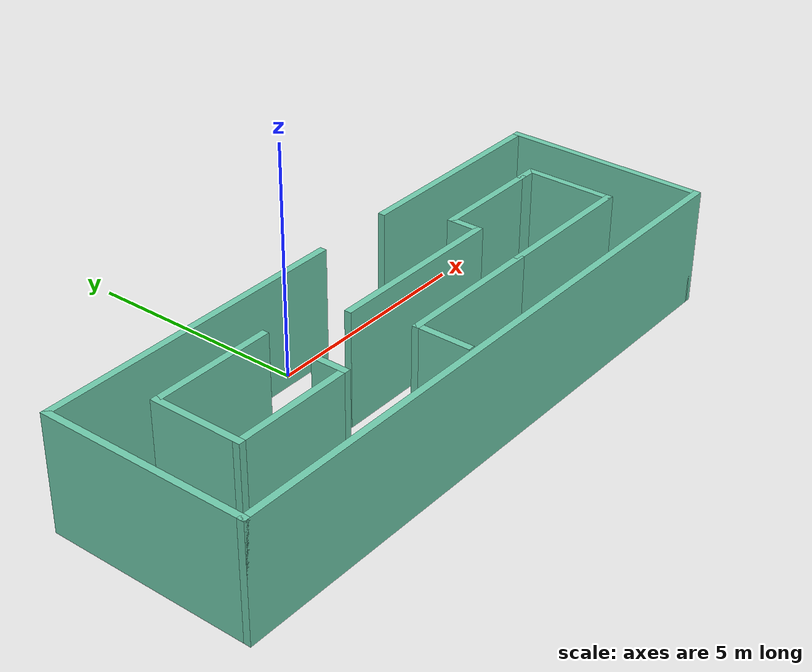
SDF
<?xml version='1.0'?>
<sdf version='1.7'>
  <model name='little-room'>
    <pose>0.675 -2.3025 0 0 -0 0</pose>
    <link name='Wall_12'>
      <collision name='Wall_12_Collision'>
        <geometry>
          <box>
            <size>4.5 0.15 2.5</size>
          </box>
        </geometry>
        <pose>0 0 1.25 0 -0 0</pose>
      </collision>
      <visual name='Wall_12_Visual'>
        <pose>0 0 1.25 0 -0 0</pose>
        <geometry>
          <box>
            <size>4.5 0.15 2.5</size>
          </box>
        </geometry>
        <material>
          <script>
            <uri>file://media/materials/scripts/gazebo.material</uri>
            <name>Gazebo/Grey</name>
          </script>
          <ambient>0.435294 0.796078 0.67451 1</ambient>
        </material>
        <meta>
          <layer>0</layer>
        </meta>
      </visual>
      <pose>-6.675 -0.0525 0 0 -0 1.5708</pose>
    </link>
    <link name='Wall_13'>
      <collision name='Wall_13_Collision'>
        <geometry>
          <box>
            <size>7 0.15 2.5</size>
          </box>
        </geometry>
        <pose>0 0 1.25 0 -0 0</pose>
      </collision>
      <visual name='Wall_13_Visual'>
        <pose>0 0 1.25 0 -0 0</pose>
        <geometry>
          <box>
            <size>7 0.15 2.5</size>
          </box>
        </geometry>
        <material>
          <script>
            <uri>file://media/materials/scripts/gazebo.material</uri>
            <name>Gazebo/Grey</name>
          </script>
          <ambient>0.435294 0.796078 0.67451 1</ambient>
        </material>
        <meta>
          <layer>0</layer>
        </meta>
      </visual>
      <pose>-3.25 2.1225 0 0 -0 0</pose>
    </link>
    <link name='Wall_16'>
      <collision name='Wall_16_Collision'>
        <geometry>
          <box>
            <size>2.75 0.15 2.5</size>
          </box>
        </geometry>
        <pose>0 0 1.25 0 -0 0</pose>
      </collision>
      <visual name='Wall_16_Visual'>
        <pose>0 0 1.25 0 -0 0</pose>
        <geometry>
          <box>
            <size>2.75 0.15 2.5</size>
          </box>
        </geometry>
        <material>
          <script>
            <uri>file://media/materials/scripts/gazebo.material</uri>
            <name>Gazebo/Grey</name>
          </script>
          <ambient>0.435294 0.796078 0.67451 1</ambient>
        </material>
        <meta>
          <layer>0</layer>
        </meta>
      </visual>
      <pose>-3.99185 -0.849499 0 0 -0 0</pose>
    </link>
    <link name='Wall_17'>
      <collision name='Wall_17_Collision'>
        <geometry>
          <box>
            <size>0.75 0.15 2.5</size>
          </box>
        </geometry>
        <pose>0 0 1.25 0 -0 0</pose>
      </collision>
      <visual name='Wall_17_Visual'>
        <pose>0 0 1.25 0 -0 0</pose>
        <geometry>
          <box>
            <size>0.75 0.15 2.5</size>
          </box>
        </geometry>
        <material>
          <script>
            <uri>file://media/materials/scripts/gazebo.material</uri>
            <name>Gazebo/Grey</name>
          </script>
          <ambient>0.435294 0.796078 0.67451 1</ambient>
        </material>
        <meta>
          <layer>0</layer>
        </meta>
      </visual>
      <pose>-2.69185 -0.5495 0 0 -0 1.5708</pose>
    </link>
    <link name='Wall_19'>
      <collision name='Wall_19_Collision'>
        <geometry>
          <box>
            <size>2 0.15 2.5</size>
          </box>
        </geometry>
        <pose>0 0 1.25 0 -0 0</pose>
      </collision>
      <visual name='Wall_19_Visual'>
        <pose>0 0 1.25 0 -0 0</pose>
        <geometry>
          <box>
            <size>2 0.15 2.5</size>
          </box>
        </geometry>
        <material>
          <script>
            <uri>file://media/materials/scripts/gazebo.material</uri>
            <name>Gazebo/Grey</name>
          </script>
          <ambient>0.435294 0.796078 0.67451 1</ambient>
        </material>
        <meta>
          <layer>0</layer>
        </meta>
      </visual>
      <pose>-5.29185 0.0755 0 0 -0 1.5708</pose>
    </link>
    <link name='Wall_2'>
      <collision name='Wall_2_Collision'>
        <geometry>
          <box>
            <size>13.5 0.15 2.5</size>
          </box>
        </geometry>
        <pose>0 0 1.25 0 -0 0</pose>
      </collision>
      <visual name='Wall_2_Visual'>
        <pose>0 0 1.25 0 -0 0</pose>
        <geometry>
          <box>
            <size>13.5 0.15 2.5</size>
          </box>
        </geometry>
        <material>
          <script>
            <uri>file://media/materials/scripts/gazebo.material</uri>
            <name>Gazebo/Grey</name>
          </script>
          <ambient>0.435294 0.796078 0.67451 1</ambient>
        </material>
        <meta>
          <layer>0</layer>
        </meta>
      </visual>
      <pose>0 -2.2275 0 0 -0 0</pose>
    </link>
    <link name='Wall_20'>
      <collision name='Wall_20_Collision'>
        <geometry>
          <box>
            <size>2.75 0.15 2.5</size>
          </box>
        </geometry>
        <pose>0 0 1.25 0 -0 0</pose>
      </collision>
      <visual name='Wall_20_Visual'>
        <pose>0 0 1.25 0 -0 0</pose>
        <geometry>
          <box>
            <size>2.75 0.15 2.5</size>
          </box>
        </geometry>
        <material>
          <script>
            <uri>file://media/materials/scripts/gazebo.material</uri>
            <name>Gazebo/Grey</name>
          </script>
          <ambient>0.435294 0.796078 0.67451 1</ambient>
        </material>
        <meta>
          <layer>0</layer>
        </meta>
      </visual>
      <pose>-3.99185 1.0005 0 0 -0 0</pose>
    </link>
    <link name='Wall_22'>
      <collision name='Wall_22_Collision'>
        <geometry>
          <box>
            <size>4 0.15 2.5</size>
          </box>
        </geometry>
        <pose>0 0 1.25 0 -0 0</pose>
      </collision>
      <visual name='Wall_22_Visual'>
        <pose>0 0 1.25 0 -0 0</pose>
        <geometry>
          <box>
            <size>4 0.15 2.5</size>
          </box>
        </geometry>
        <material>
          <script>
            <uri>file://media/materials/scripts/gazebo.material</uri>
            <name>Gazebo/Grey</name>
          </script>
          <ambient>0.435294 0.796078 0.67451 1</ambient>
        </material>
        <meta>
          <layer>0</layer>
        </meta>
      </visual>
      <pose>0.782783 0.303492 0 0 -0 0</pose>
    </link>
    <link name='Wall_23'>
      <collision name='Wall_23_Collision'>
        <geometry>
          <box>
            <size>0.75 0.15 2.5</size>
          </box>
        </geometry>
        <pose>0 0 1.25 0 -0 0</pose>
      </collision>
      <visual name='Wall_23_Visual'>
        <pose>0 0 1.25 0 -0 0</pose>
        <geometry>
          <box>
            <size>0.75 0.15 2.5</size>
          </box>
        </geometry>
        <material>
          <script>
            <uri>file://media/materials/scripts/gazebo.material</uri>
            <name>Gazebo/Grey</name>
          </script>
          <ambient>0.435294 0.796078 0.67451 1</ambient>
        </material>
        <meta>
          <layer>0</layer>
        </meta>
      </visual>
      <pose>2.70778 0.603492 0 0 -0 1.5708</pose>
    </link>
    <link name='Wall_24'>
      <collision name='Wall_24_Collision'>
        <geometry>
          <box>
            <size>2.5 0.15 2.5</size>
          </box>
        </geometry>
        <pose>0 0 1.25 0 -0 0</pose>
      </collision>
      <visual name='Wall_24_Visual'>
        <pose>0 0 1.25 0 -0 0</pose>
        <geometry>
          <box>
            <size>2.5 0.15 2.5</size>
          </box>
        </geometry>
        <material>
          <script>
            <uri>file://media/materials/scripts/gazebo.material</uri>
            <name>Gazebo/Grey</name>
          </script>
          <ambient>0.435294 0.796078 0.67451 1</ambient>
        </material>
        <meta>
          <layer>0</layer>
        </meta>
      </visual>
      <pose>3.88278 0.903492 0 0 -0 0</pose>
    </link>
    <link name='Wall_25'>
      <collision name='Wall_25_Collision'>
        <geometry>
          <box>
            <size>0.5 0.15 2.5</size>
          </box>
        </geometry>
        <pose>0 0 1.25 0 -0 0</pose>
      </collision>
      <visual name='Wall_25_Visual'>
        <pose>0 0 1.25 0 -0 0</pose>
        <geometry>
          <box>
            <size>0.5 0.15 2.5</size>
          </box>
        </geometry>
        <material>
          <script>
            <uri>file://media/materials/scripts/gazebo.material</uri>
            <name>Gazebo/Grey</name>
          </script>
          <ambient>0.435294 0.796078 0.67451 1</ambient>
        </material>
        <meta>
          <layer>0</layer>
        </meta>
      </visual>
      <pose>5.23278 0.903492 0 0 -0 0</pose>
    </link>
    <link name='Wall_26'>
      <collision name='Wall_26_Collision'>
        <geometry>
          <box>
            <size>2 0.15 2.5</size>
          </box>
        </geometry>
        <pose>0 0 1.25 0 -0 0</pose>
      </collision>
      <visual name='Wall_26_Visual'>
        <pose>0 0 1.25 0 -0 0</pose>
        <geometry>
          <box>
            <size>2 0.15 2.5</size>
          </box>
        </geometry>
        <material>
          <script>
            <uri>file://media/materials/scripts/gazebo.material</uri>
            <name>Gazebo/Grey</name>
          </script>
          <ambient>0.435294 0.796078 0.67451 1</ambient>
        </material>
        <meta>
          <layer>0</layer>
        </meta>
      </visual>
      <pose>5.40778 -0.021508 0 0 -0 -1.5708</pose>
    </link>
    <link name='Wall_27'>
      <collision name='Wall_27_Collision'>
        <geometry>
          <box>
            <size>3.25 0.15 2.5</size>
          </box>
        </geometry>
        <pose>0 0 1.25 0 -0 0</pose>
      </collision>
      <visual name='Wall_27_Visual'>
        <pose>0 0 1.25 0 -0 0</pose>
        <geometry>
          <box>
            <size>3.25 0.15 2.5</size>
          </box>
        </geometry>
        <material>
          <script>
            <uri>file://media/materials/scripts/gazebo.material</uri>
            <name>Gazebo/Grey</name>
          </script>
          <ambient>0.435294 0.796078 0.67451 1</ambient>
        </material>
        <meta>
          <layer>0</layer>
        </meta>
      </visual>
      <pose>3.85778 -0.946508 0 0 -0 3.14159</pose>
    </link>
    <link name='Wall_3'>
      <collision name='Wall_3_Collision'>
        <geometry>
          <box>
            <size>4.5 0.15 2.5</size>
          </box>
        </geometry>
        <pose>0 0 1.25 0 -0 0</pose>
      </collision>
      <visual name='Wall_3_Visual'>
        <pose>0 0 1.25 0 -0 0</pose>
        <geometry>
          <box>
            <size>4.5 0.15 2.5</size>
          </box>
        </geometry>
        <material>
          <script>
            <uri>file://media/materials/scripts/gazebo.material</uri>
            <name>Gazebo/Grey</name>
          </script>
          <ambient>0.435294 0.796078 0.67451 1</ambient>
        </material>
        <meta>
          <layer>0</layer>
        </meta>
      </visual>
      <pose>6.675 -0.0525 0 0 -0 1.5708</pose>
    </link>
    <link name='Wall_32'>
      <collision name='Wall_32_Collision'>
        <geometry>
          <box>
            <size>3.25 0.15 2.5</size>
          </box>
        </geometry>
        <pose>0 0 1.25 0 -0 0</pose>
      </collision>
      <visual name='Wall_32_Visual'>
        <pose>0 0 1.25 0 -0 0</pose>
        <geometry>
          <box>
            <size>3.25 0.15 2.5</size>
          </box>
        </geometry>
        <material>
          <script>
            <uri>file://media/materials/scripts/gazebo.material</uri>
            <name>Gazebo/Grey</name>
          </script>
          <ambient>0.435294 0.796078 0.67451 1</ambient>
        </material>
        <meta>
          <layer>0</layer>
        </meta>
      </visual>
      <pose>0.757783 -0.946508 0 0 -0 3.14159</pose>
    </link>
    <link name='Wall_33'>
      <collision name='Wall_33_Collision'>
        <geometry>
          <box>
            <size>1.25 0.15 2.5</size>
          </box>
        </geometry>
        <pose>0 0 1.25 0 -0 0</pose>
      </collision>
      <visual name='Wall_33_Visual'>
        <pose>0 0 1.25 0 -0 0</pose>
        <geometry>
          <box>
            <size>1.25 0.15 2.5</size>
          </box>
        </geometry>
        <material>
          <script>
            <uri>file://media/materials/scripts/gazebo.material</uri>
            <name>Gazebo/Grey</name>
          </script>
          <ambient>0.435294 0.796078 0.67451 1</ambient>
        </material>
        <meta>
          <layer>0</layer>
        </meta>
      </visual>
      <pose>-0.792217 -1.49651 0 0 -0 -1.5708</pose>
    </link>
    <link name='Wall_4'>
      <collision name='Wall_4_Collision'>
        <geometry>
          <box>
            <size>4.75 0.15 2.5</size>
          </box>
        </geometry>
        <pose>0 0 1.25 0 -0 0</pose>
      </collision>
      <visual name='Wall_4_Visual'>
        <pose>0 0 1.25 0 -0 0</pose>
        <geometry>
          <box>
            <size>4.75 0.15 2.5</size>
          </box>
        </geometry>
        <material>
          <script>
            <uri>file://media/materials/scripts/gazebo.material</uri>
            <name>Gazebo/Grey</name>
          </script>
          <ambient>0.435294 0.796078 0.67451 1</ambient>
        </material>
        <meta>
          <layer>0</layer>
        </meta>
      </visual>
      <pose>4.375 2.1225 0 0 -0 3.14159</pose>
    </link>
    <static>1</static>
  </model>
</sdf>
